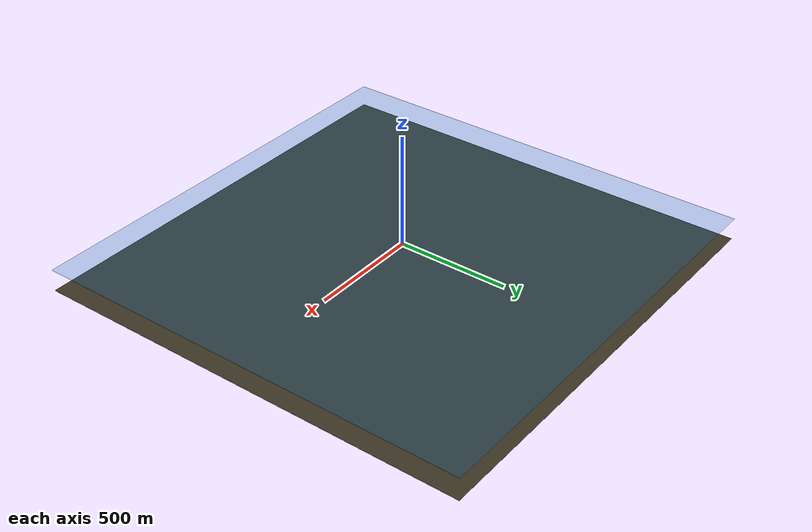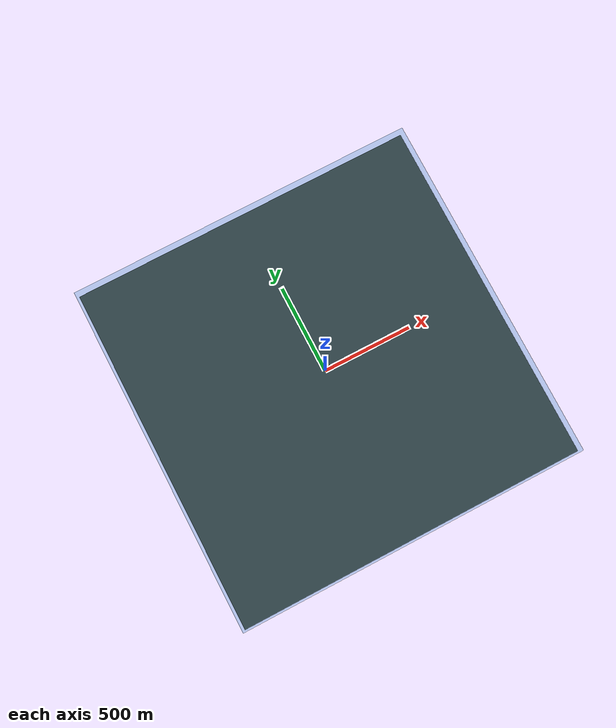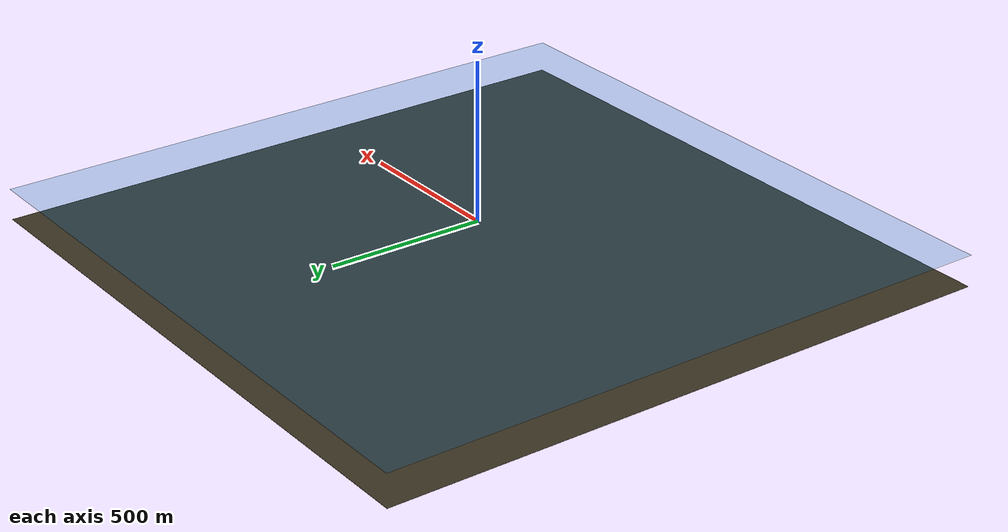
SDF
<sdf version="1.9">
 <world name="underwater_harbor">
  <physics name="1ms" type="ignored">
   <max_step_size>0.004</max_step_size>
   <real_time_factor>1.0</real_time_factor>
  </physics>
  <plugin filename="gz-sim-physics-system" name="gz::sim::systems::Physics"/>
  <plugin filename="gz-sim-user-commands-system" name="gz::sim::systems::UserCommands"/>
  <plugin filename="gz-sim-scene-broadcaster-system" name="gz::sim::systems::SceneBroadcaster"/>
  <plugin filename="gz-sim-imu-system" name="gz::sim::systems::Imu"/>
  <plugin filename="gz-sim-buoyancy-system" name="gz::sim::systems::Buoyancy">
   <graded_buoyancy>
    <default_density>1025.0</default_density>
    <density_change><above_depth>0</above_depth><density>1.0</density></density_change>
   </graded_buoyancy>
  </plugin>
  <gravity>0 0 -9.81</gravity>
  <magnetic_field>5.5645e-6 22.8758e-6 -42.3884e-6</magnetic_field>
  <spherical_coordinates>
   <surface_model>EARTH_WGS84</surface_model>
   <world_frame_orientation>ENU</world_frame_orientation>
   <latitude_deg>-33.724223</latitude_deg>
   <longitude_deg>150.679736</longitude_deg>
   <elevation>0</elevation>
   <heading_deg>0</heading_deg>
  </spherical_coordinates>
  <scene><ambient>0.4 0.5 0.6 1.0</ambient><background>0.1 0.25 0.45 1.0</background><grid>false</grid></scene>
  <light type="directional" name="sun">
   <pose>0 0 50 0 0 0</pose>
   <diffuse>0.9 0.95 1.0 1</diffuse>
   <specular>0.2 0.2 0.2 1</specular>
   <direction>0.3 0.3 -1</direction>
  </light>
  <model name="seabed">
   <static>true</static>
   <pose>0 0 -100 0 0 0</pose>
   <link name="seabed_link">
    <collision name="seabed_collision"><geometry><box><size>2000 2000 1.0</size></box></geometry></collision>
    <visual name="seabed_visual">
     <geometry><box><size>2000 2000 1.0</size></box></geometry>
     <material><ambient>0.20 0.18 0.12 1</ambient><diffuse>0.25 0.22 0.15 1</diffuse></material>
    </visual>
   </link>
  </model>
  <model name="water_surface">
   <static>true</static>
   <link name="water_surface_link">
    <visual name="water_surface_visual">
     <transparency>0.75</transparency>
     <geometry><box><size>2000 2000 0.01</size></box></geometry>
     <material><ambient>0.0 0.3 0.5 0.5</ambient><diffuse>0.0 0.4 0.7 0.5</diffuse></material>
    </visual>
   </link>
  </model>
  <include><uri>model://ground_station</uri><pose>30 20 0 0 0 0</pose></include>
 </world>
</sdf>

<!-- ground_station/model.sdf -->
<sdf version="1.9">
  <model name="ground_station">
    <static>true</static>
    <link name="base">
      <visual name="hut">
        <geometry><box><size>4 4 3</size></box></geometry>
        <material><ambient>0.85 0.85 0.2 1</ambient><diffuse>0.9 0.9 0.25 1</diffuse></material>
      </visual>
      <visual name="mast">
        <pose>0 0 4.0 0 0 0</pose>
        <geometry><cylinder><radius>0.12</radius><length>5</length></cylinder></geometry>
        <material><ambient>0.2 0.2 0.2 1</ambient><diffuse>0.3 0.3 0.3 1</diffuse></material>
      </visual>
      <visual name="dish">
        <pose>0 0 6.6 0 0 0</pose>
        <geometry><sphere><radius>0.8</radius></sphere></geometry>
        <material><ambient>0.9 0.1 0.1 1</ambient><diffuse>1 0.15 0.15 1</diffuse></material>
      </visual>
      <collision name="c"><geometry><box><size>4 4 3</size></box></geometry></collision>
    </link>
  </model>
</sdf>
